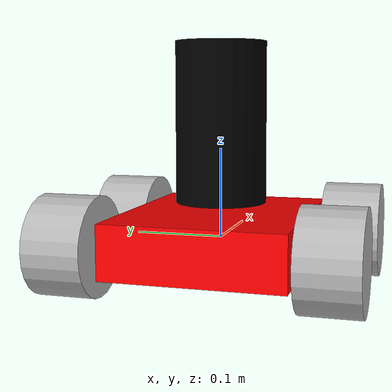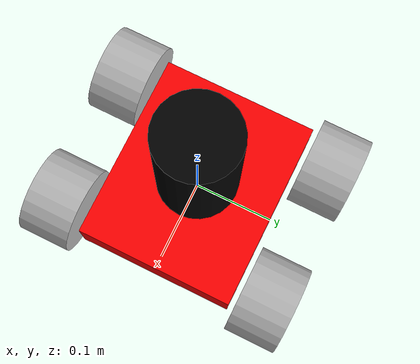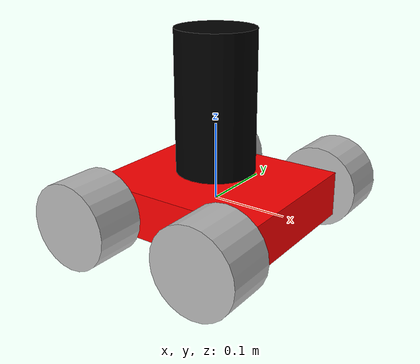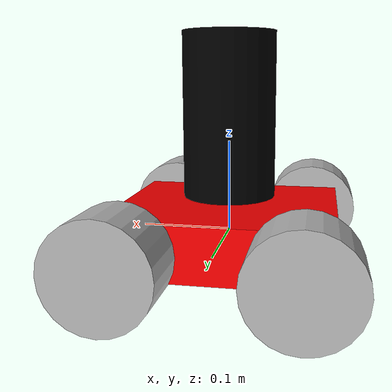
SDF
<?xml version="1.0" ?>
<sdf version="1.5">
  <model name="mariam_agent">
  <static>false</static>

  <!-- ****************** ROBOT BASE FOOTPRINT ***************************  -->
  <pose>0.0 0.0 0.0 0.0 0.0 0.0</pose>
  <link name="base_footprint"/>

  <!-- ********************** ROBOT BASE *********************************  -->
  <link name="base_link">

    <collision name="base_collision">
      <pose>0 0 0 0 0 0</pose>
      <geometry>
        <box>
          <size> 0.24 0.20 0.06</size>
        </box>
      </geometry>
    </collision>

    <visual name="base_visual">
      <pose>0 0 0 0 0 0</pose>
      <geometry>
        <box>
          <size> 0.24 0.20 0.06</size>
        </box>
      </geometry>
      <material>
        <ambient>1.0 0.0 0.0 1.0</ambient>
        <diffuse>1.0 0.0 0.0 1.0</diffuse>
        <specular>0.0 0.0 0.0 1.0</specular>
        <emissive>0.0 0.0 0.0 1.0</emissive>
      </material>
    </visual>
  </link>

  <!-- *********************** IMU SENSOR SETUP **************************  -->
  <link name="imu_link">
    <gravity>true</gravity>
    <sensor name="bmb_imu" type="imu">
      <always_on>true</always_on>
      <update_rate>100</update_rate>
      <visualize>true</visualize>
      <imu>
        <orientation>
          <x>
            <noise type="gaussian">
              <mean>0.0</mean>
              <stddev>2e-3</stddev>
            </noise>
          </x>
          <y>
            <noise type="gaussian">
              <mean>0.0</mean>
              <stddev>2e-3</stddev>
            </noise>
          </y>
          <z>
            <noise type="gaussian">
              <mean>0.0</mean>
              <stddev>2e-3</stddev>
            </noise>
          </z>
        </orientation>
        <angular_velocity>
          <x>
            <noise type="gaussian">
              <mean>0.0</mean>
              <stddev>2e-4</stddev>
            </noise>
          </x>
          <y>
            <noise type="gaussian">
              <mean>0.0</mean>
              <stddev>2e-4</stddev>
            </noise>
          </y>
          <z>
            <noise type="gaussian">
              <mean>0.0</mean>
              <stddev>2e-4</stddev>
            </noise>
          </z>
        </angular_velocity>
        <linear_acceleration>
          <x>
            <noise type="gaussian">
              <mean>0.0</mean>
              <stddev>1.7e-2</stddev>
            </noise>
          </x>
          <y>
            <noise type="gaussian">
              <mean>0.0</mean>
              <stddev>1.7e-2</stddev>
            </noise>
          </y>
          <z>
            <noise type="gaussian">
              <mean>0.0</mean>
              <stddev>1.7e-2</stddev>
            </noise>
          </z>
        </linear_acceleration>
      </imu>
      <plugin name="mariam_agent_imu" filename="libgazebo_ros_imu_sensor.so">
        <initial_orientation_as_reference>false</initial_orientation_as_reference>
        <frame_name>imu_link</frame_name>
        <ros>
          <namespace>/imu</namespace>
          <remapping>~/out:=data</remapping>
        </ros>
      </plugin>
    </sensor>
  </link>

  <!-- *********************** GPS SETUP *********************************  -->
  <link name="gps_link">
    <sensor name="bmb_gps" type="gps">
      <always_on>true</always_on>
      <update_rate>10.0</update_rate>
      <gps>
        <position_sensing>
          <horizontal>
            <noise type="gaussian">
              <mean>0.0</mean>
              <stddev>1e-2</stddev>
            </noise>
          </horizontal>
          <vertical>
            <noise type="gaussian">
              <mean>0.0</mean>
              <stddev>1</stddev>
            </noise>
          </vertical>
        </position_sensing>
      </gps>
      <plugin name="mariam_agent_gps" filename="libgazebo_ros_gps_sensor.so">
        <ros>
          <remapping>~/out:=gps/fix</remapping>
        </ros>
      </plugin>
    </sensor>
  </link>

  <!-- *********************** DRIVE WHEELS ******************************  -->
  <link name="drivewheel_left_back_link">
    <pose>-0.09 0.14 0 0 1.570796 1.570796</pose>

    <collision name="drivewheel_left_back_collision">
      <geometry>
        <cylinder>
          <radius>0.055</radius>
          <length>0.065</length>
        </cylinder>
      </geometry>
    </collision>

    <visual name="drivewheel_left_back_visual">
      <geometry>
        <cylinder>
          <radius>0.055</radius>
          <length>0.065</length>
        </cylinder>
      </geometry>
    </visual>
  </link>

  <link name="drivewheel_left_front_link">
    <pose>0.09 0.14 0 0 1.570796 1.570796</pose>

    <collision name="drivewheel_left_front_collision">
      <geometry>
        <cylinder>
          <radius>0.055</radius>
          <length>0.065</length>
        </cylinder>
      </geometry>
    </collision>

    <visual name="drivewheel_left_front_visual">
      <geometry>
        <cylinder>
          <radius>0.055</radius>
          <length>0.065</length>
        </cylinder>
      </geometry>
    </visual>
  </link>

  <link name="drivewheel_right_back_link">
    <pose>-0.09 -0.14 0 0 1.570796 1.570796</pose>

    <collision name="drivewheel_right_back_collision">
      <geometry>
        <cylinder>
          <radius>0.055</radius>
          <length>0.065</length>
        </cylinder>
      </geometry>
    </collision>

    <visual name="drivewheel_right_back_visual">
      <geometry>
        <cylinder>
          <radius>0.055</radius>
          <length>0.065</length>
        </cylinder>
      </geometry>
    </visual>
  </link>

  <link name="drivewheel_right_front_link">
    <pose>0.09 -0.14 0 0 1.570796 1.570796</pose>

    <collision name="drivewheel_right_front_collision">
      <geometry>
        <cylinder>
          <radius>0.055</radius>
          <length>0.065</length>
        </cylinder>
      </geometry>
    </collision>

    <visual name="drivewheel_right_front_visual">
      <geometry>
        <cylinder>
          <radius>0.055</radius>
          <length>0.065</length>
        </cylinder>
      </geometry>
    </visual>
  </link>

  <!-- ************************ JOINTS ***********************************  -->
  <!-- Pose of the joint is the same as the child link frame -->
  <!-- Axis is the axis of rotation relative to the child link frame -->

  <joint name="base_joint" type="fixed">
    <parent>base_footprint</parent>
    <child>base_link</child>
    <pose>0 0 0 0 0 0</pose>
  </joint>

  <joint name="drivewheel_left_back_joint" type="revolute">
    <parent>base_link</parent>
    <child>drivewheel_left_back_link</child>
    <pose>0 0 0 0 0 0</pose>
    <axis>
      <xyz>0 0 1</xyz>
    </axis>
  </joint>

  <joint name="drivewheel_left_front_joint" type="revolute">
    <parent>base_link</parent>
    <child>drivewheel_left_front_link</child>
    <pose>0 0 0 0 0 0</pose>
    <axis>
      <xyz>0 0 1</xyz>
    </axis>
  </joint>

  <joint name="drivewheel_right_back_joint" type="revolute">
    <parent>base_link</parent>
    <child>drivewheel_right_back_link</child>
    <pose>0 0 0 0 0 0</pose>
    <axis>
      <xyz>0 0 1</xyz>
    </axis>
  </joint>

  <joint name="drivewheel_right_front_joint" type="revolute">
    <parent>base_link</parent>
    <child>drivewheel_right_front_link</child>
    <pose>0 0 0 0 0 0</pose>
    <axis>
      <xyz>0 0 1</xyz>
    </axis>
  </joint>

  <joint name="imu_joint" type="fixed">
    <parent>base_link</parent>
    <child>imu_link</child>
    <pose>0 0 0 0 0 0</pose>
  </joint>

  <joint name="gps_joint" type="fixed">
    <parent>base_link</parent>
    <child>gps_link</child>
    <pose>0 0 0 0 0 0</pose>
  </joint>

  <joint name="lidar_joint" type="fixed">
    <parent>base_link</parent>
    <child>lidar_link</child>
    <pose>0 0 0 0 0 0</pose>
  </joint>

  <!-- *********************** WHEEL ODOMETRY ***************************    -->
  <plugin name="diff_drive_controller" filename="libgazebo_ros_diff_drive.so">

    <updateRate>30.0</updateRate>
    <robotNamespace>/</robotNamespace>

    <!-- wheels -->
    <num_wheel_pairs>2</num_wheel_pairs>
    <left_joint>drivewheel_left_front_joint</left_joint>
    <left_joint>drivewheel_left_back_joint</left_joint>
    <right_joint>drivewheel_right_back_joint</right_joint>
    <right_joint>drivewheel_right_front_joint</right_joint>

    <!-- kinematics -->
    <wheel_separation>0.18</wheel_separation>
    <wheel_diameter>0.11</wheel_diameter>

    <!-- Limits -->
    <max_wheel_torque>20.0</max_wheel_torque>
    <max_wheel_acceleration>1.0</max_wheel_acceleration>

    <!-- Output -->
    <odometry_frame>odom</odometry_frame>
    <robot_base_frame>base_footprint</robot_base_frame>

    <publish_odom>true</publish_odom>
    <publish_odom_tf>true</publish_odom_tf>
    <update_rate>30.0</update_rate>

    <!-- Odometry source, 0 for ENCODER, 1 for WORLD, defaults to WORLD -->
    <odometry_source>1</odometry_source>

    <ros>
      <remapping>odom:=wheel/odometry</remapping>
    </ros>

  </plugin>

  <!-- *********************** JOINT STATE PUBLISHER *********************   -->

  <plugin name="mariam_agent_joint_state" filename="libgazebo_ros_joint_state_publisher.so">
    <ros>
      <remapping>~/out:=joint_states</remapping>
    </ros>
    <update_rate>30</update_rate>
    <joint_name>drivewheel_left_back_joint</joint_name>
    <joint_name>drivewheel_right_back_joint</joint_name>
    <joint_name>drivewheel_left_front_joint</joint_name>
    <joint_name>drivewheel_right_front_joint</joint_name>
  </plugin>

  <!-- ****************************** LIDAR *****************************    -->
  <link name="lidar_link">
    <inertial>
      <pose>0 0 0.13 0 0 0</pose>
      <inertia>
        <ixx>0.001</ixx>
        <ixy>0.000</ixy>
        <ixz>0.000</ixz>
        <iyy>0.001</iyy>
        <iyz>0.000</iyz>
        <izz>0.001</izz>
      </inertia>
      <mass>0.114</mass>
    </inertial>

    <collision name="lidar_collision">
      <pose>0 0 0.13 0 0 0</pose>
      <geometry>
        <cylinder>
          <radius>0.0508</radius>
          <length>0.18</length>
        </cylinder>
      </geometry>
    </collision>

    <visual name="lidar_visual">
      <pose>0 0 0.13 0 0 0</pose>
      <geometry>
        <cylinder>
          <radius>0.0508</radius>
          <length>0.18</length>
        </cylinder>
      </geometry>
      <material>
        <ambient>0.0 0.0 0.0 1.0</ambient>
        <diffuse>0.0 0.0 0.0 1.0</diffuse>
        <specular>0.0 0.0 0.0 1.0</specular>
        <emissive>0.0 0.0 0.0 1.0</emissive>
      </material>
    </visual>

    <sensor name="lidar" type="ray">
      <pose>0 0 0.215 0 0 0</pose>
      <always_on>true</always_on>
      <visualize>true</visualize>
      <update_rate>5</update_rate>
      <ray>
        <scan>
          <horizontal>
            <samples>120</samples>
            <resolution>1.000000</resolution>
            <min_angle>-3.14159</min_angle>
            <max_angle>3.14159</max_angle>
          </horizontal>
        </scan>
        <range>
          <min>0.3</min>
          <max>15.0</max>
          <resolution>0.015</resolution>
        </range>
        <noise>
          <type>gaussian</type>
          <mean>0.0</mean>
          <stddev>0.01</stddev>
        </noise>
      </ray>
      <plugin name="scan" filename="libgazebo_ros_ray_sensor.so">
        <ros>
          <remapping>~/out:=scan</remapping>
        </ros>
        <output_type>sensor_msgs/LaserScan</output_type>
        <frame_name>lidar_link</frame_name>
      </plugin>
    </sensor>
  </link>

  </model>
</sdf>
